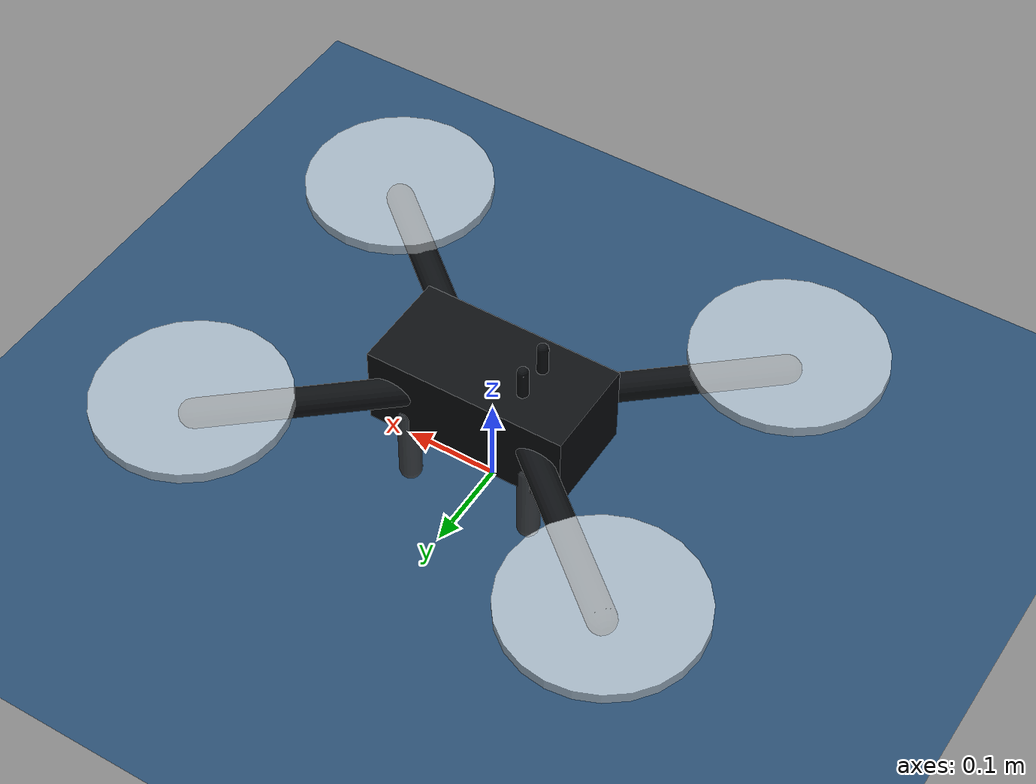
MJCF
<mujoco model="Skydio X2 - minimal">
  <compiler angle="degree"/>
  <option timestep="0.01" gravity="0 0 -9.81" integrator="implicitfast"/>

  <visual>
    <headlight ambient="0.35 0.35 0.35" diffuse="0.8 0.8 0.8" specular="0.2 0.2 0.2"/>
    <rgba haze="0.15 0.25 0.35 1"/>
    <global azimuth="135" elevation="-20"/>
  </visual>

  <asset>
    <texture name="grid" type="2d" builtin="checker" width="512" height="512"
             rgb1="0.12 0.22 0.32" rgb2="0.20 0.38 0.55"/>
    <material name="ground" texture="grid" texrepeat="12 12" reflectance="0.15"/>
    <material name="dark" rgba="0.05 0.06 0.07 1"/>
    <material name="metal" rgba="0.25 0.27 0.29 1"/>
    <material name="rotor" rgba="0.85 0.88 0.90 0.72"/>
  </asset>

  <worldbody>
    <light pos="0 -2 4" dir="0 0 -1"/>
    <geom name="floor" type="plane" size="4 4 0.1" material="ground"/>
    <body name="skydio_x2" pos="0 0 0.085">
      <joint name="x" type="slide" axis="1 0 0" range="-2.3 2.3"/>
      <joint name="y" type="slide" axis="0 1 0" range="-1.3 1.3"/>
      <joint name="z" type="slide" axis="0 0 1" range="0 1.8"/>

      <geom name="body" type="box" pos="0 0 0.035" size="0.11 0.055 0.045" material="dark" mass="0.741"/>
      <geom name="camera" type="sphere" pos="0.10 -0.005 0.015" size="0.035" material="metal" mass="0.08"/>

      <geom type="capsule" fromto="0.06 0.035 0.04  0.23 0.18 0.04" size="0.015" material="dark" mass="0.09"/>
      <geom type="capsule" fromto="0.06 -0.035 0.04  0.23 -0.18 0.04" size="0.015" material="dark" mass="0.09"/>
      <geom type="capsule" fromto="-0.06 0.035 0.04  -0.23 0.18 0.04" size="0.015" material="dark" mass="0.09"/>
      <geom type="capsule" fromto="-0.06 -0.035 0.04  -0.23 -0.18 0.04" size="0.015" material="dark" mass="0.09"/>

      <geom type="cylinder" pos="0.23 0.18 0.06" size="0.10 0.006" material="rotor" mass="0.015"/>
      <geom type="cylinder" pos="0.23 -0.18 0.06" size="0.10 0.006" material="rotor" mass="0.015"/>
      <geom type="cylinder" pos="-0.23 0.18 0.06" size="0.10 0.006" material="rotor" mass="0.015"/>
      <geom type="cylinder" pos="-0.23 -0.18 0.06" size="0.10 0.006" material="rotor" mass="0.015"/>

      <geom type="capsule" fromto="0.07 0.045 0.01  0.07 0.045 -0.075" size="0.012" material="metal" mass="0.02"/>
      <geom type="capsule" fromto="0.07 -0.045 0.01  0.07 -0.045 -0.075" size="0.012" material="metal" mass="0.02"/>
      <geom type="capsule" fromto="-0.07 0.045 0.01  -0.07 0.045 -0.075" size="0.012" material="metal" mass="0.02"/>
      <geom type="capsule" fromto="-0.07 -0.045 0.01  -0.07 -0.045 -0.075" size="0.012" material="metal" mass="0.02"/>
      <geom type="capsule" fromto="-0.045 0.018 0.075  -0.045 0.018 0.11" size="0.006" material="dark" mass="0.002"/>
      <geom type="capsule" fromto="-0.045 -0.018 0.075  -0.045 -0.018 0.11" size="0.006" material="dark" mass="0.002"/>
    </body>
  </worldbody>

  <actuator>
    <motor name="force_x" joint="x" ctrllimited="true" ctrlrange="-100 100"/>
    <motor name="force_y" joint="y" ctrllimited="true" ctrlrange="-100 100"/>
    <motor name="force_z" joint="z" ctrllimited="true" ctrlrange="-100 100"/>
  </actuator>
</mujoco>
